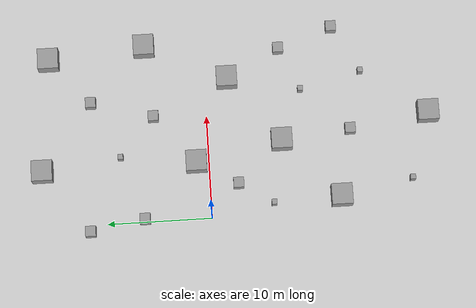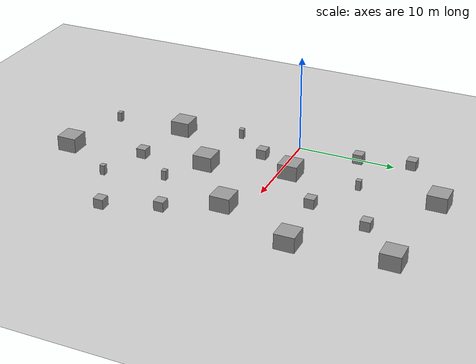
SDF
<sdf version="1.6">
 <world name="default">
  <model name="ground_plane">
   <static>1</static>
   <link name="link">
    <collision name="collision">
     <geometry><plane><normal>0 0 1</normal><size>100 100</size></plane></geometry>
     <surface>
      <contact><collide_bitmask>65535</collide_bitmask></contact>
      <friction><ode><mu>100</mu><mu2>50</mu2></ode></friction>
     </surface>
    </collision>
    <visual name="visual">
     <cast_shadows>0</cast_shadows>
     <geometry><plane><normal>0 0 1</normal><size>100 100</size></plane></geometry>
     <material>
      <script><uri>file://media/materials/scripts/gazebo.material</uri><name>Gazebo/Grey</name></script>
     </material>
    </visual>
   </link>
  </model>
  <model name="unit_box_1">
   <pose>-0.684189 11.6081 0.5 0 -0 0</pose>
   <link name="link">
    <inertial>
     <mass>1</mass>
     <inertia>
      <ixx>0.166667</ixx>
      <ixy>0</ixy>
      <ixz>0</ixz>
      <iyy>0.166667</iyy>
      <iyz>0</iyz>
      <izz>0.166667</izz>
     </inertia>
    </inertial>
    <collision name="collision"><geometry><box><size>1 1 1</size></box></geometry></collision>
    <visual name="visual">
     <geometry><box><size>1 1 1</size></box></geometry>
     <material>
      <script><name>Gazebo/Grey</name><uri>file://media/materials/scripts/gazebo.material</uri></script>
     </material>
    </visual>
   </link>
  </model>
  <model name="0.5x0.5_cube_4">
   <link name="link">
    <inertial>
     <mass>1</mass>
     <inertia>
      <ixx>0.166667</ixx>
      <ixy>0</ixy>
      <ixz>0</ixz>
      <iyy>0.166667</iyy>
      <iyz>0</iyz>
      <izz>0.166667</izz>
     </inertia>
    </inertial>
    <visual name="visual">
     <geometry><box><size>0.5 0.5 1</size></box></geometry>
     <material>
      <script><name>Gazebo/Grey</name><uri>file://media/materials/scripts/gazebo.material</uri></script>
      <shader type="vertex"><normal_map>__default__</normal_map></shader>
      <ambient>0.3 0.3 0.3 1</ambient>
      <diffuse>0.7 0.7 0.7 1</diffuse>
      <specular>0.01 0.01 0.01 1</specular>
      <emissive>0 0 0 1</emissive>
     </material>
     <pose>0 0 0.5 0 -0 0</pose>
    </visual>
    <collision name="collision">
     <geometry><box><size>1 1 1</size></box></geometry>
     <surface>
      <friction>
       <ode><mu>1</mu><mu2>1</mu2><fdir1>0 0 0</fdir1><slip1>0</slip1><slip2>0</slip2></ode>
       <torsional>
        <coefficient>1</coefficient>
        <patch_radius>0</patch_radius>
        <surface_radius>0</surface_radius>
        <use_patch_radius>1</use_patch_radius>
        <ode><slip>0</slip></ode>
       </torsional>
      </friction>
      <bounce><restitution_coefficient>0</restitution_coefficient><threshold>1e+06</threshold></bounce>
      <contact>
       <collide_without_contact>0</collide_without_contact>
       <collide_without_contact_bitmask>1</collide_without_contact_bitmask>
       <collide_bitmask>1</collide_bitmask>
       <ode>
        <soft_cfm>0</soft_cfm>
        <soft_erp>0.2</soft_erp>
        <kp>1e+13</kp>
        <kd>1</kd>
        <max_vel>0.01</max_vel>
        <min_depth>0</min_depth>
       </ode>
       <bullet>
        <split_impulse>1</split_impulse>
        <split_impulse_penetration_threshold>-0.01</split_impulse_penetration_threshold>
        <soft_cfm>0</soft_cfm>
        <soft_erp>0.2</soft_erp>
        <kp>1e+13</kp>
        <kd>1</kd>
       </bullet>
      </contact>
     </surface>
    </collision>
   </link>
   <static>0</static>
   <pose>1.04625 -6.00454 0.5 0 -0 0</pose>
  </model>
  <model name="2x2_cube">
   <link name="link">
    <inertial>
     <mass>1</mass>
     <inertia>
      <ixx>0.166667</ixx>
      <ixy>0</ixy>
      <ixz>0</ixz>
      <iyy>0.166667</iyy>
      <iyz>0</iyz>
      <izz>0.166667</izz>
     </inertia>
    </inertial>
    <visual name="visual">
     <geometry><box><size>2 2 2</size></box></geometry>
     <material>
      <script><name>Gazebo/Grey</name><uri>file://media/materials/scripts/gazebo.material</uri></script>
      <shader type="vertex"><normal_map>__default__</normal_map></shader>
      <ambient>0.3 0.3 0.3 1</ambient>
      <diffuse>0.7 0.7 0.7 1</diffuse>
      <specular>0.01 0.01 0.01 1</specular>
      <emissive>0 0 0 1</emissive>
     </material>
    </visual>
    <collision name="collision">
     <geometry><box><size>1 1 1</size></box></geometry>
     <surface>
      <friction>
       <ode><mu>1</mu><mu2>1</mu2><fdir1>0 0 0</fdir1><slip1>0</slip1><slip2>0</slip2></ode>
       <torsional>
        <coefficient>1</coefficient>
        <patch_radius>0</patch_radius>
        <surface_radius>0</surface_radius>
        <use_patch_radius>1</use_patch_radius>
        <ode><slip>0</slip></ode>
       </torsional>
      </friction>
      <bounce><restitution_coefficient>0</restitution_coefficient><threshold>1e+06</threshold></bounce>
      <contact>
       <collide_without_contact>0</collide_without_contact>
       <collide_without_contact_bitmask>1</collide_without_contact_bitmask>
       <collide_bitmask>1</collide_bitmask>
       <ode>
        <soft_cfm>0</soft_cfm>
        <soft_erp>0.2</soft_erp>
        <kp>1e+13</kp>
        <kd>1</kd>
        <max_vel>0.01</max_vel>
        <min_depth>0</min_depth>
       </ode>
       <bullet>
        <split_impulse>1</split_impulse>
        <split_impulse_penetration_threshold>-0.01</split_impulse_penetration_threshold>
        <soft_cfm>0</soft_cfm>
        <soft_erp>0.2</soft_erp>
        <kp>1e+13</kp>
        <kd>1</kd>
       </bullet>
      </contact>
     </surface>
    </collision>
   </link>
   <static>0</static>
   <pose>5.52974 1.21304 0.5 0 -0 0</pose>
  </model>
  <model name="unit_box_2">
   <pose>0.255872 6.3816 0.5 -0 -0 -0</pose>
   <link name="link">
    <inertial>
     <mass>1</mass>
     <inertia>
      <ixx>0.166667</ixx>
      <ixy>0</ixy>
      <ixz>0</ixz>
      <iyy>0.166667</iyy>
      <iyz>0</iyz>
      <izz>0.166667</izz>
     </inertia>
    </inertial>
    <collision name="collision"><geometry><box><size>1 1 1</size></box></geometry></collision>
    <visual name="visual">
     <geometry><box><size>1 1 1</size></box></geometry>
     <material>
      <script><name>Gazebo/Grey</name><uri>file://media/materials/scripts/gazebo.material</uri></script>
     </material>
    </visual>
   </link>
  </model>
  <model name="2x2_cube_2">
   <link name="link">
    <inertial>
     <mass>1</mass>
     <inertia>
      <ixx>0.166667</ixx>
      <ixy>0</ixy>
      <ixz>0</ixz>
      <iyy>0.166667</iyy>
      <iyz>0</iyz>
      <izz>0.166667</izz>
     </inertia>
    </inertial>
    <visual name="visual">
     <geometry><box><size>2 2 2</size></box></geometry>
     <material>
      <script><name>Gazebo/Grey</name><uri>file://media/materials/scripts/gazebo.material</uri></script>
      <shader type="vertex"><normal_map>__default__</normal_map></shader>
      <ambient>0.3 0.3 0.3 1</ambient>
      <diffuse>0.7 0.7 0.7 1</diffuse>
      <specular>0.01 0.01 0.01 1</specular>
      <emissive>0 0 0 1</emissive>
     </material>
    </visual>
    <collision name="collision">
     <geometry><box><size>1 1 1</size></box></geometry>
     <surface>
      <friction>
       <ode><mu>1</mu><mu2>1</mu2><fdir1>0 0 0</fdir1><slip1>0</slip1><slip2>0</slip2></ode>
       <torsional>
        <coefficient>1</coefficient>
        <patch_radius>0</patch_radius>
        <surface_radius>0</surface_radius>
        <use_patch_radius>1</use_patch_radius>
        <ode><slip>0</slip></ode>
       </torsional>
      </friction>
      <bounce><restitution_coefficient>0</restitution_coefficient><threshold>1e+06</threshold></bounce>
      <contact>
       <collide_without_contact>0</collide_without_contact>
       <collide_without_contact_bitmask>1</collide_without_contact_bitmask>
       <collide_bitmask>1</collide_bitmask>
       <ode>
        <soft_cfm>0</soft_cfm>
        <soft_erp>0.2</soft_erp>
        <kp>1e+13</kp>
        <kd>1</kd>
        <max_vel>0.01</max_vel>
        <min_depth>0</min_depth>
       </ode>
       <bullet>
        <split_impulse>1</split_impulse>
        <split_impulse_penetration_threshold>-0.01</split_impulse_penetration_threshold>
        <soft_cfm>0</soft_cfm>
        <soft_erp>0.2</soft_erp>
        <kp>1e+13</kp>
        <kd>1</kd>
       </bullet>
      </contact>
     </surface>
    </collision>
   </link>
   <static>0</static>
   <pose>1.45527 -12.5043 0.5 0 -0 0</pose>
  </model>
  <model name="2x2_cube_3">
   <link name="link">
    <inertial>
     <mass>1</mass>
     <inertia>
      <ixx>0.166667</ixx>
      <ixy>0</ixy>
      <ixz>0</ixz>
      <iyy>0.166667</iyy>
      <iyz>0</iyz>
      <izz>0.166667</izz>
     </inertia>
    </inertial>
    <visual name="visual">
     <geometry><box><size>2 2 2</size></box></geometry>
     <material>
      <script><name>Gazebo/Grey</name><uri>file://media/materials/scripts/gazebo.material</uri></script>
      <shader type="vertex"><normal_map>__default__</normal_map></shader>
      <ambient>0.3 0.3 0.3 1</ambient>
      <diffuse>0.7 0.7 0.7 1</diffuse>
      <specular>0.01 0.01 0.01 1</specular>
      <emissive>0 0 0 1</emissive>
     </material>
    </visual>
    <collision name="collision">
     <geometry><box><size>1 1 1</size></box></geometry>
     <surface>
      <friction>
       <ode><mu>1</mu><mu2>1</mu2><fdir1>0 0 0</fdir1><slip1>0</slip1><slip2>0</slip2></ode>
       <torsional>
        <coefficient>1</coefficient>
        <patch_radius>0</patch_radius>
        <surface_radius>0</surface_radius>
        <use_patch_radius>1</use_patch_radius>
        <ode><slip>0</slip></ode>
       </torsional>
      </friction>
      <bounce><restitution_coefficient>0</restitution_coefficient><threshold>1e+06</threshold></bounce>
      <contact>
       <collide_without_contact>0</collide_without_contact>
       <collide_without_contact_bitmask>1</collide_without_contact_bitmask>
       <collide_bitmask>1</collide_bitmask>
       <ode>
        <soft_cfm>0</soft_cfm>
        <soft_erp>0.2</soft_erp>
        <kp>1e+13</kp>
        <kd>1</kd>
        <max_vel>0.01</max_vel>
        <min_depth>0</min_depth>
       </ode>
       <bullet>
        <split_impulse>1</split_impulse>
        <split_impulse_penetration_threshold>-0.01</split_impulse_penetration_threshold>
        <soft_cfm>0</soft_cfm>
        <soft_erp>0.2</soft_erp>
        <kp>1e+13</kp>
        <kd>1</kd>
       </bullet>
      </contact>
     </surface>
    </collision>
   </link>
   <static>0</static>
   <pose>7.23428 -7.09701 0.5 0 -0 0</pose>
  </model>
  <model name="unit_box_3">
   <pose>7.95816 -13.7737 0.5 -0 -0 -0</pose>
   <link name="link">
    <inertial>
     <mass>1</mass>
     <inertia>
      <ixx>0.166667</ixx>
      <ixy>0</ixy>
      <ixz>0</ixz>
      <iyy>0.166667</iyy>
      <iyz>0</iyz>
      <izz>0.166667</izz>
     </inertia>
    </inertial>
    <collision name="collision"><geometry><box><size>1 1 1</size></box></geometry></collision>
    <visual name="visual">
     <geometry><box><size>1 1 1</size></box></geometry>
     <material>
      <script><name>Gazebo/Grey</name><uri>file://media/materials/scripts/gazebo.material</uri></script>
     </material>
    </visual>
   </link>
  </model>
  <model name="0.5x0.5_cube_4_5">
   <link name="link">
    <inertial>
     <mass>1</mass>
     <inertia>
      <ixx>0.166667</ixx>
      <ixy>0</ixy>
      <ixz>0</ixz>
      <iyy>0.166667</iyy>
      <iyz>0</iyz>
      <izz>0.166667</izz>
     </inertia>
    </inertial>
    <visual name="visual">
     <geometry><box><size>0.5 0.5 1</size></box></geometry>
     <material>
      <script><name>Gazebo/Grey</name><uri>file://media/materials/scripts/gazebo.material</uri></script>
      <shader type="vertex"><normal_map>__default__</normal_map></shader>
      <ambient>0.3 0.3 0.3 1</ambient>
      <diffuse>0.7 0.7 0.7 1</diffuse>
      <specular>0.01 0.01 0.01 1</specular>
      <emissive>0 0 0 1</emissive>
     </material>
     <pose>0 0 0.5 0 -0 0</pose>
    </visual>
    <collision name="collision">
     <geometry><box><size>1 1 1</size></box></geometry>
     <surface>
      <friction>
       <ode><mu>1</mu><mu2>1</mu2><fdir1>0 0 0</fdir1><slip1>0</slip1><slip2>0</slip2></ode>
       <torsional>
        <coefficient>1</coefficient>
        <patch_radius>0</patch_radius>
        <surface_radius>0</surface_radius>
        <use_patch_radius>1</use_patch_radius>
        <ode><slip>0</slip></ode>
       </torsional>
      </friction>
      <bounce><restitution_coefficient>0</restitution_coefficient><threshold>1e+06</threshold></bounce>
      <contact>
       <collide_without_contact>0</collide_without_contact>
       <collide_without_contact_bitmask>1</collide_without_contact_bitmask>
       <collide_bitmask>1</collide_bitmask>
       <ode>
        <soft_cfm>0</soft_cfm>
        <soft_erp>0.2</soft_erp>
        <kp>1e+13</kp>
        <kd>1</kd>
        <max_vel>0.01</max_vel>
        <min_depth>0</min_depth>
       </ode>
       <bullet>
        <split_impulse>1</split_impulse>
        <split_impulse_penetration_threshold>-0.01</split_impulse_penetration_threshold>
        <soft_cfm>0</soft_cfm>
        <soft_erp>0.2</soft_erp>
        <kp>1e+13</kp>
        <kd>1</kd>
       </bullet>
      </contact>
     </surface>
    </collision>
   </link>
   <static>0</static>
   <pose>6.26282 8.43975 0.5 0 -0 0</pose>
  </model>
  <model name="unit_box_4">
   <pose>3.22331 -2.73267 0.5 -0 -0 -0</pose>
   <link name="link">
    <inertial>
     <mass>1</mass>
     <inertia>
      <ixx>0.166667</ixx>
      <ixy>0</ixy>
      <ixz>0</ixz>
      <iyy>0.166667</iyy>
      <iyz>0</iyz>
      <izz>0.166667</izz>
     </inertia>
    </inertial>
    <collision name="collision"><geometry><box><size>1 1 1</size></box></geometry></collision>
    <visual name="visual">
     <geometry><box><size>1 1 1</size></box></geometry>
     <material>
      <script><name>Gazebo/Grey</name><uri>file://media/materials/scripts/gazebo.material</uri></script>
     </material>
    </visual>
   </link>
  </model>
  <model name="2x2_cube_4">
   <link name="link">
    <inertial>
     <mass>1</mass>
     <inertia>
      <ixx>0.166667</ixx>
      <ixy>0</ixy>
      <ixz>0</ixz>
      <iyy>0.166667</iyy>
      <iyz>0</iyz>
      <izz>0.166667</izz>
     </inertia>
    </inertial>
    <visual name="visual">
     <geometry><box><size>2 2 2</size></box></geometry>
     <material>
      <script><name>Gazebo/Grey</name><uri>file://media/materials/scripts/gazebo.material</uri></script>
      <shader type="vertex"><normal_map>__default__</normal_map></shader>
      <ambient>0.3 0.3 0.3 1</ambient>
      <diffuse>0.7 0.7 0.7 1</diffuse>
      <specular>0.01 0.01 0.01 1</specular>
      <emissive>0 0 0 1</emissive>
     </material>
    </visual>
    <collision name="collision">
     <geometry><box><size>1 1 1</size></box></geometry>
     <surface>
      <friction>
       <ode><mu>1</mu><mu2>1</mu2><fdir1>0 0 0</fdir1><slip1>0</slip1><slip2>0</slip2></ode>
       <torsional>
        <coefficient>1</coefficient>
        <patch_radius>0</patch_radius>
        <surface_radius>0</surface_radius>
        <use_patch_radius>1</use_patch_radius>
        <ode><slip>0</slip></ode>
       </torsional>
      </friction>
      <bounce><restitution_coefficient>0</restitution_coefficient><threshold>1e+06</threshold></bounce>
      <contact>
       <collide_without_contact>0</collide_without_contact>
       <collide_without_contact_bitmask>1</collide_without_contact_bitmask>
       <collide_bitmask>1</collide_bitmask>
       <ode>
        <soft_cfm>0</soft_cfm>
        <soft_erp>0.2</soft_erp>
        <kp>1e+13</kp>
        <kd>1</kd>
        <max_vel>0.01</max_vel>
        <min_depth>0</min_depth>
       </ode>
       <bullet>
        <split_impulse>1</split_impulse>
        <split_impulse_penetration_threshold>-0.01</split_impulse_penetration_threshold>
        <soft_cfm>0</soft_cfm>
        <soft_erp>0.2</soft_erp>
        <kp>1e+13</kp>
        <kd>1</kd>
       </bullet>
      </contact>
     </surface>
    </collision>
   </link>
   <static>0</static>
   <pose>5.37789 16.0238 0.5 0 -0 0</pose>
  </model>
  <model name="unit_box_8">
   <pose>10.2338 5.14923 0.5 -0 -0 -0</pose>
   <link name="link">
    <inertial>
     <mass>1</mass>
     <inertia>
      <ixx>0.166667</ixx>
      <ixy>0</ixy>
      <ixz>0</ixz>
      <iyy>0.166667</iyy>
      <iyz>0</iyz>
      <izz>0.166667</izz>
     </inertia>
    </inertial>
    <collision name="collision"><geometry><box><size>1 1 1</size></box></geometry></collision>
    <visual name="visual">
     <geometry><box><size>1 1 1</size></box></geometry>
     <material>
      <script><name>Gazebo/Grey</name><uri>file://media/materials/scripts/gazebo.material</uri></script>
     </material>
    </visual>
   </link>
  </model>
  <model name="2x2_cube_6">
   <link name="link">
    <inertial>
     <mass>1</mass>
     <inertia>
      <ixx>0.166667</ixx>
      <ixy>0</ixy>
      <ixz>0</ixz>
      <iyy>0.166667</iyy>
      <iyz>0</iyz>
      <izz>0.166667</izz>
     </inertia>
    </inertial>
    <visual name="visual">
     <geometry><box><size>2 2 2</size></box></geometry>
     <material>
      <script><name>Gazebo/Grey</name><uri>file://media/materials/scripts/gazebo.material</uri></script>
      <shader type="vertex"><normal_map>__default__</normal_map></shader>
      <ambient>0.3 0.3 0.3 1</ambient>
      <diffuse>0.7 0.7 0.7 1</diffuse>
      <specular>0.01 0.01 0.01 1</specular>
      <emissive>0 0 0 1</emissive>
     </material>
    </visual>
    <collision name="collision">
     <geometry><box><size>1 1 1</size></box></geometry>
     <surface>
      <friction>
       <ode><mu>1</mu><mu2>1</mu2><fdir1>0 0 0</fdir1><slip1>0</slip1><slip2>0</slip2></ode>
       <torsional>
        <coefficient>1</coefficient>
        <patch_radius>0</patch_radius>
        <surface_radius>0</surface_radius>
        <use_patch_radius>1</use_patch_radius>
        <ode><slip>0</slip></ode>
       </torsional>
      </friction>
      <bounce><restitution_coefficient>0</restitution_coefficient><threshold>1e+06</threshold></bounce>
      <contact>
       <collide_without_contact>0</collide_without_contact>
       <collide_without_contact_bitmask>1</collide_without_contact_bitmask>
       <collide_bitmask>1</collide_bitmask>
       <ode>
        <soft_cfm>0</soft_cfm>
        <soft_erp>0.2</soft_erp>
        <kp>1e+13</kp>
        <kd>1</kd>
        <max_vel>0.01</max_vel>
        <min_depth>0</min_depth>
       </ode>
       <bullet>
        <split_impulse>1</split_impulse>
        <split_impulse_penetration_threshold>-0.01</split_impulse_penetration_threshold>
        <soft_cfm>0</soft_cfm>
        <soft_erp>0.2</soft_erp>
        <kp>1e+13</kp>
        <kd>1</kd>
       </bullet>
      </contact>
     </surface>
    </collision>
   </link>
   <static>0</static>
   <pose>13.6742 -2.13898 0.5 0 -0 0</pose>
  </model>
  <model name="unit_box_9">
   <pose>11.8992 11.1459 0.5 -0 -0 -0</pose>
   <link name="link">
    <inertial>
     <mass>1</mass>
     <inertia>
      <ixx>0.166667</ixx>
      <ixy>0</ixy>
      <ixz>0</ixz>
      <iyy>0.166667</iyy>
      <iyz>0</iyz>
      <izz>0.166667</izz>
     </inertia>
    </inertial>
    <collision name="collision"><geometry><box><size>1 1 1</size></box></geometry></collision>
    <visual name="visual">
     <geometry><box><size>1 1 1</size></box></geometry>
     <material>
      <script><name>Gazebo/Grey</name><uri>file://media/materials/scripts/gazebo.material</uri></script>
     </material>
    </visual>
   </link>
  </model>
  <model name="0.5x0.5_cube_4_6">
   <link name="link">
    <inertial>
     <mass>1</mass>
     <inertia>
      <ixx>0.166667</ixx>
      <ixy>0</ixy>
      <ixz>0</ixz>
      <iyy>0.166667</iyy>
      <iyz>0</iyz>
      <izz>0.166667</izz>
     </inertia>
    </inertial>
    <visual name="visual">
     <geometry><box><size>0.5 0.5 1</size></box></geometry>
     <material>
      <script><name>Gazebo/Grey</name><uri>file://media/materials/scripts/gazebo.material</uri></script>
      <shader type="vertex"><normal_map>__default__</normal_map></shader>
      <ambient>0.3 0.3 0.3 1</ambient>
      <diffuse>0.7 0.7 0.7 1</diffuse>
      <specular>0.01 0.01 0.01 1</specular>
      <emissive>0 0 0 1</emissive>
     </material>
     <pose>0 0 0.5 0 -0 0</pose>
    </visual>
    <collision name="collision">
     <geometry><box><size>1 1 1</size></box></geometry>
     <surface>
      <friction>
       <ode><mu>1</mu><mu2>1</mu2><fdir1>0 0 0</fdir1><slip1>0</slip1><slip2>0</slip2></ode>
       <torsional>
        <coefficient>1</coefficient>
        <patch_radius>0</patch_radius>
        <surface_radius>0</surface_radius>
        <use_patch_radius>1</use_patch_radius>
        <ode><slip>0</slip></ode>
       </torsional>
      </friction>
      <bounce><restitution_coefficient>0</restitution_coefficient><threshold>1e+06</threshold></bounce>
      <contact>
       <collide_without_contact>0</collide_without_contact>
       <collide_without_contact_bitmask>1</collide_without_contact_bitmask>
       <collide_bitmask>1</collide_bitmask>
       <ode>
        <soft_cfm>0</soft_cfm>
        <soft_erp>0.2</soft_erp>
        <kp>1e+13</kp>
        <kd>1</kd>
        <max_vel>0.01</max_vel>
        <min_depth>0</min_depth>
       </ode>
       <bullet>
        <split_impulse>1</split_impulse>
        <split_impulse_penetration_threshold>-0.01</split_impulse_penetration_threshold>
        <soft_cfm>0</soft_cfm>
        <soft_erp>0.2</soft_erp>
        <kp>1e+13</kp>
        <kd>1</kd>
       </bullet>
      </contact>
     </surface>
    </collision>
   </link>
   <static>0</static>
   <pose>12.0178 -9.17388 0.5 0 -0 0</pose>
  </model>
  <model name="0.5x0.5_cube_4_7">
   <link name="link">
    <inertial>
     <mass>1</mass>
     <inertia>
      <ixx>0.166667</ixx>
      <ixy>0</ixy>
      <ixz>0</ixz>
      <iyy>0.166667</iyy>
      <iyz>0</iyz>
      <izz>0.166667</izz>
     </inertia>
    </inertial>
    <visual name="visual">
     <geometry><box><size>0.5 0.5 1</size></box></geometry>
     <material>
      <script><name>Gazebo/Grey</name><uri>file://media/materials/scripts/gazebo.material</uri></script>
      <shader type="vertex"><normal_map>__default__</normal_map></shader>
      <ambient>0.3 0.3 0.3 1</ambient>
      <diffuse>0.7 0.7 0.7 1</diffuse>
      <specular>0.01 0.01 0.01 1</specular>
      <emissive>0 0 0 1</emissive>
     </material>
     <pose>0 0 0.5 0 -0 0</pose>
    </visual>
    <collision name="collision">
     <geometry><box><size>1 1 1</size></box></geometry>
     <surface>
      <friction>
       <ode><mu>1</mu><mu2>1</mu2><fdir1>0 0 0</fdir1><slip1>0</slip1><slip2>0</slip2></ode>
       <torsional>
        <coefficient>1</coefficient>
        <patch_radius>0</patch_radius>
        <surface_radius>0</surface_radius>
        <use_patch_radius>1</use_patch_radius>
        <ode><slip>0</slip></ode>
       </torsional>
      </friction>
      <bounce><restitution_coefficient>0</restitution_coefficient><threshold>1e+06</threshold></bounce>
      <contact>
       <collide_without_contact>0</collide_without_contact>
       <collide_without_contact_bitmask>1</collide_without_contact_bitmask>
       <collide_bitmask>1</collide_bitmask>
       <ode>
        <soft_cfm>0</soft_cfm>
        <soft_erp>0.2</soft_erp>
        <kp>1e+13</kp>
        <kd>1</kd>
        <max_vel>0.01</max_vel>
        <min_depth>0</min_depth>
       </ode>
       <bullet>
        <split_impulse>1</split_impulse>
        <split_impulse_penetration_threshold>-0.01</split_impulse_penetration_threshold>
        <soft_cfm>0</soft_cfm>
        <soft_erp>0.2</soft_erp>
        <kp>1e+13</kp>
        <kd>1</kd>
       </bullet>
      </contact>
     </surface>
    </collision>
   </link>
   <static>0</static>
   <pose>2.69088 -19.3742 0.5 0 -0 0</pose>
  </model>
  <model name="2x2_cube_7">
   <link name="link">
    <inertial>
     <mass>1</mass>
     <inertia>
      <ixx>0.166667</ixx>
      <ixy>0</ixy>
      <ixz>0</ixz>
      <iyy>0.166667</iyy>
      <iyz>0</iyz>
      <izz>0.166667</izz>
     </inertia>
    </inertial>
    <visual name="visual">
     <geometry><box><size>2 2 2</size></box></geometry>
     <material>
      <script><name>Gazebo/Grey</name><uri>file://media/materials/scripts/gazebo.material</uri></script>
      <shader type="vertex"><normal_map>__default__</normal_map></shader>
      <ambient>0.3 0.3 0.3 1</ambient>
      <diffuse>0.7 0.7 0.7 1</diffuse>
      <specular>0.01 0.01 0.01 1</specular>
      <emissive>0 0 0 1</emissive>
     </material>
    </visual>
    <collision name="collision">
     <geometry><box><size>1 1 1</size></box></geometry>
     <surface>
      <friction>
       <ode><mu>1</mu><mu2>1</mu2><fdir1>0 0 0</fdir1><slip1>0</slip1><slip2>0</slip2></ode>
       <torsional>
        <coefficient>1</coefficient>
        <patch_radius>0</patch_radius>
        <surface_radius>0</surface_radius>
        <use_patch_radius>1</use_patch_radius>
        <ode><slip>0</slip></ode>
       </torsional>
      </friction>
      <bounce><restitution_coefficient>0</restitution_coefficient><threshold>1e+06</threshold></bounce>
      <contact>
       <collide_without_contact>0</collide_without_contact>
       <collide_without_contact_bitmask>1</collide_without_contact_bitmask>
       <collide_bitmask>1</collide_bitmask>
       <ode>
        <soft_cfm>0</soft_cfm>
        <soft_erp>0.2</soft_erp>
        <kp>1e+13</kp>
        <kd>1</kd>
        <max_vel>0.01</max_vel>
        <min_depth>0</min_depth>
       </ode>
       <bullet>
        <split_impulse>1</split_impulse>
        <split_impulse_penetration_threshold>-0.01</split_impulse_penetration_threshold>
        <soft_cfm>0</soft_cfm>
        <soft_erp>0.2</soft_erp>
        <kp>1e+13</kp>
        <kd>1</kd>
       </bullet>
      </contact>
     </surface>
    </collision>
   </link>
   <static>0</static>
   <pose>17.2684 5.75436 0.5 0 -0 0</pose>
  </model>
  <model name="0.5x0.5_cube_4_8">
   <link name="link">
    <inertial>
     <mass>1</mass>
     <inertia>
      <ixx>0.166667</ixx>
      <ixy>0</ixy>
      <ixz>0</ixz>
      <iyy>0.166667</iyy>
      <iyz>0</iyz>
      <izz>0.166667</izz>
     </inertia>
    </inertial>
    <visual name="visual">
     <geometry><box><size>0.5 0.5 1</size></box></geometry>
     <material>
      <script><name>Gazebo/Grey</name><uri>file://media/materials/scripts/gazebo.material</uri></script>
      <shader type="vertex"><normal_map>__default__</normal_map></shader>
      <ambient>0.3 0.3 0.3 1</ambient>
      <diffuse>0.7 0.7 0.7 1</diffuse>
      <specular>0.01 0.01 0.01 1</specular>
      <emissive>0 0 0 1</emissive>
     </material>
     <pose>0 0 0.5 0 -0 0</pose>
    </visual>
    <collision name="collision">
     <geometry><box><size>1 1 1</size></box></geometry>
     <surface>
      <friction>
       <ode><mu>1</mu><mu2>1</mu2><fdir1>0 0 0</fdir1><slip1>0</slip1><slip2>0</slip2></ode>
       <torsional>
        <coefficient>1</coefficient>
        <patch_radius>0</patch_radius>
        <surface_radius>0</surface_radius>
        <use_patch_radius>1</use_patch_radius>
        <ode><slip>0</slip></ode>
       </torsional>
      </friction>
      <bounce><restitution_coefficient>0</restitution_coefficient><threshold>1e+06</threshold></bounce>
      <contact>
       <collide_without_contact>0</collide_without_contact>
       <collide_without_contact_bitmask>1</collide_without_contact_bitmask>
       <collide_bitmask>1</collide_bitmask>
       <ode>
        <soft_cfm>0</soft_cfm>
        <soft_erp>0.2</soft_erp>
        <kp>1e+13</kp>
        <kd>1</kd>
        <max_vel>0.01</max_vel>
        <min_depth>0</min_depth>
       </ode>
       <bullet>
        <split_impulse>1</split_impulse>
        <split_impulse_penetration_threshold>-0.01</split_impulse_penetration_threshold>
        <soft_cfm>0</soft_cfm>
        <soft_erp>0.2</soft_erp>
        <kp>1e+13</kp>
        <kd>1</kd>
       </bullet>
      </contact>
     </surface>
    </collision>
   </link>
   <static>0</static>
   <pose>13.5157 -15.0861 0.5 0 -0 0</pose>
  </model>
  <model name="unit_box_13">
   <pose>16.3747 -7.30184 0.5 -0 -0 -0</pose>
   <link name="link">
    <inertial>
     <mass>1</mass>
     <inertia>
      <ixx>0.166667</ixx>
      <ixy>0</ixy>
      <ixz>0</ixz>
      <iyy>0.166667</iyy>
      <iyz>0</iyz>
      <izz>0.166667</izz>
     </inertia>
    </inertial>
    <collision name="collision"><geometry><box><size>1 1 1</size></box></geometry></collision>
    <visual name="visual">
     <geometry><box><size>1 1 1</size></box></geometry>
     <material>
      <script><name>Gazebo/Grey</name><uri>file://media/materials/scripts/gazebo.material</uri></script>
     </material>
    </visual>
   </link>
  </model>
  <model name="unit_box_15">
   <pose>18.2297 -12.5926 0.5 0 -0 0</pose>
   <link name="link">
    <inertial>
     <mass>1</mass>
     <inertia>
      <ixx>0.166667</ixx>
      <ixy>0</ixy>
      <ixz>0</ixz>
      <iyy>0.166667</iyy>
      <iyz>0</iyz>
      <izz>0.166667</izz>
     </inertia>
    </inertial>
    <collision name="collision"><geometry><box><size>1 1 1</size></box></geometry></collision>
    <visual name="visual">
     <geometry><box><size>1 1 1</size></box></geometry>
     <material>
      <script><name>Gazebo/Grey</name><uri>file://media/materials/scripts/gazebo.material</uri></script>
     </material>
    </visual>
   </link>
  </model>
  <model name="2x2_cube_9">
   <link name="link">
    <inertial>
     <mass>1</mass>
     <inertia>
      <ixx>0.166667</ixx>
      <ixy>0</ixy>
      <ixz>0</ixz>
      <iyy>0.166667</iyy>
      <iyz>0</iyz>
      <izz>0.166667</izz>
     </inertia>
    </inertial>
    <visual name="visual">
     <geometry><box><size>2 2 2</size></box></geometry>
     <material>
      <script><name>Gazebo/Grey</name><uri>file://media/materials/scripts/gazebo.material</uri></script>
      <shader type="vertex"><normal_map>__default__</normal_map></shader>
      <ambient>0.3 0.3 0.3 1</ambient>
      <diffuse>0.7 0.7 0.7 1</diffuse>
      <specular>0.01 0.01 0.01 1</specular>
      <emissive>0 0 0 1</emissive>
     </material>
    </visual>
    <collision name="collision">
     <geometry><box><size>1 1 1</size></box></geometry>
     <surface>
      <friction>
       <ode><mu>1</mu><mu2>1</mu2><fdir1>0 0 0</fdir1><slip1>0</slip1><slip2>0</slip2></ode>
       <torsional>
        <coefficient>1</coefficient>
        <patch_radius>0</patch_radius>
        <surface_radius>0</surface_radius>
        <use_patch_radius>1</use_patch_radius>
        <ode><slip>0</slip></ode>
       </torsional>
      </friction>
      <bounce><restitution_coefficient>0</restitution_coefficient><threshold>1e+06</threshold></bounce>
      <contact>
       <collide_without_contact>0</collide_without_contact>
       <collide_without_contact_bitmask>1</collide_without_contact_bitmask>
       <collide_bitmask>1</collide_bitmask>
       <ode>
        <soft_cfm>0</soft_cfm>
        <soft_erp>0.2</soft_erp>
        <kp>1e+13</kp>
        <kd>1</kd>
        <max_vel>0.01</max_vel>
        <min_depth>0</min_depth>
       </ode>
       <bullet>
        <split_impulse>1</split_impulse>
        <split_impulse_penetration_threshold>-0.01</split_impulse_penetration_threshold>
        <soft_cfm>0</soft_cfm>
        <soft_erp>0.2</soft_erp>
        <kp>1e+13</kp>
        <kd>1</kd>
       </bullet>
      </contact>
     </surface>
    </collision>
   </link>
   <static>0</static>
   <pose>16.4065 15.0714 0.5 0 -0 0</pose>
  </model>
  <model name="2x2_cube_10">
   <link name="link">
    <inertial>
     <mass>1</mass>
     <inertia>
      <ixx>0.166667</ixx>
      <ixy>0</ixy>
      <ixz>0</ixz>
      <iyy>0.166667</iyy>
      <iyz>0</iyz>
      <izz>0.166667</izz>
     </inertia>
    </inertial>
    <visual name="visual">
     <geometry><box><size>2 2 2</size></box></geometry>
     <material>
      <script><name>Gazebo/Grey</name><uri>file://media/materials/scripts/gazebo.material</uri></script>
      <shader type="vertex"><normal_map>__default__</normal_map></shader>
      <ambient>0.3 0.3 0.3 1</ambient>
      <diffuse>0.7 0.7 0.7 1</diffuse>
      <specular>0.01 0.01 0.01 1</specular>
      <emissive>0 0 0 1</emissive>
     </material>
    </visual>
    <collision name="collision">
     <geometry><box><size>1 1 1</size></box></geometry>
     <surface>
      <friction>
       <ode><mu>1</mu><mu2>1</mu2><fdir1>0 0 0</fdir1><slip1>0</slip1><slip2>0</slip2></ode>
       <torsional>
        <coefficient>1</coefficient>
        <patch_radius>0</patch_radius>
        <surface_radius>0</surface_radius>
        <use_patch_radius>1</use_patch_radius>
        <ode><slip>0</slip></ode>
       </torsional>
      </friction>
      <bounce><restitution_coefficient>0</restitution_coefficient><threshold>1e+06</threshold></bounce>
      <contact>
       <collide_without_contact>0</collide_without_contact>
       <collide_without_contact_bitmask>1</collide_without_contact_bitmask>
       <collide_bitmask>1</collide_bitmask>
       <ode>
        <soft_cfm>0</soft_cfm>
        <soft_erp>0.2</soft_erp>
        <kp>1e+13</kp>
        <kd>1</kd>
        <max_vel>0.01</max_vel>
        <min_depth>0</min_depth>
       </ode>
       <bullet>
        <split_impulse>1</split_impulse>
        <split_impulse_penetration_threshold>-0.01</split_impulse_penetration_threshold>
        <soft_cfm>0</soft_cfm>
        <soft_erp>0.2</soft_erp>
        <kp>1e+13</kp>
        <kd>1</kd>
       </bullet>
      </contact>
     </surface>
    </collision>
   </link>
   <static>0</static>
   <pose>9.20875 -21.3798 0.5 0 -0 0</pose>
  </model>
 </world>
</sdf>
